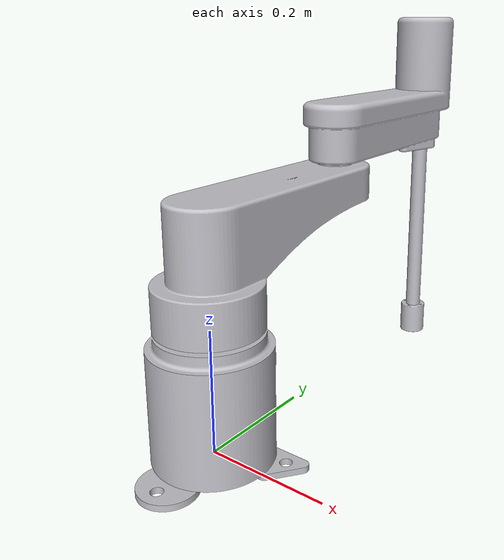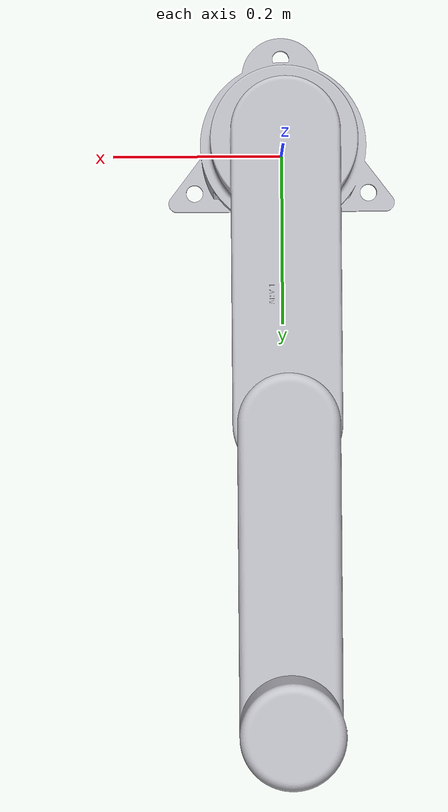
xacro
<?xml version="1.0" ?>
<robot name="robot_assembly" xmlns:xacro="http://www.ros.org/wiki/xacro">

<xacro:include filename="$(find robot_assembly_description)/urdf/materials.xacro" />
<xacro:include filename="$(find robot_assembly_description)/urdf/robot_assembly.trans" />
<xacro:include filename="$(find robot_assembly_description)/urdf/robot_assembly.gazebo" />
<link name="base_link">
  <inertial>
    <origin xyz="-1.888762183439215e-15 -0.010495627041338022 0.09733404643227067" rpy="0 0 0"/>
    <mass value="5.007906755743693"/>
    <inertia ixx="0.027282" iyy="0.030304" izz="0.02086" ixy="0.0" iyz="-0.001324" ixz="-0.0"/>
  </inertial>
  <visual>
    <origin xyz="0 0 0" rpy="0 0 0"/>
    <geometry>
      <mesh filename="package://robot_assembly_description/meshes/base_link.stl" scale="0.001 0.001 0.001"/>
    </geometry>
    <material name="silver"/>
  </visual>
  <collision>
    <origin xyz="0 0 0" rpy="0 0 0"/>
    <geometry>
      <mesh filename="package://robot_assembly_description/meshes/base_link.stl" scale="0.001 0.001 0.001"/>
    </geometry>
  </collision>
</link>

<link name="arm2_1">
  <inertial>
    <origin xyz="-9.14622896552462e-07 0.19697821278629074 0.08613854339324689" rpy="0 0 0"/>
    <mass value="4.952981163199924"/>
    <inertia ixx="0.093532" iyy="0.022331" izz="0.078607" ixy="-0.0" iyz="-0.018464" ixz="-0.0"/>
  </inertial>
  <visual>
    <origin xyz="-0.0 -0.32 -0.3985" rpy="0 0 0"/>
    <geometry>
      <mesh filename="package://robot_assembly_description/meshes/arm2_1.stl" scale="0.001 0.001 0.001"/>
    </geometry>
    <material name="silver"/>
  </visual>
  <collision>
    <origin xyz="-0.0 -0.32 -0.3985" rpy="0 0 0"/>
    <geometry>
      <mesh filename="package://robot_assembly_description/meshes/arm2_1.stl" scale="0.001 0.001 0.001"/>
    </geometry>
  </collision>
</link>

<link name="shaft_1">
  <inertial>
    <origin xyz="3.204271979681934e-16 2.55351295663786e-15 -0.2276256112953061" rpy="0 0 0"/>
    <mass value="0.29882619323390436"/>
    <inertia ixx="0.004714" iyy="0.004714" izz="5.9e-05" ixy="-0.0" iyz="0.0" ixz="0.0"/>
  </inertial>
  <visual>
    <origin xyz="-0.0 -0.64 -0.3815" rpy="0 0 0"/>
    <geometry>
      <mesh filename="package://robot_assembly_description/meshes/shaft_1.stl" scale="0.001 0.001 0.001"/>
    </geometry>
    <material name="silver"/>
  </visual>
  <collision>
    <origin xyz="-0.0 -0.64 -0.3815" rpy="0 0 0"/>
    <geometry>
      <mesh filename="package://robot_assembly_description/meshes/shaft_1.stl" scale="0.001 0.001 0.001"/>
    </geometry>
  </collision>
</link>

<link name="arm1_1">
  <inertial>
    <origin xyz="-6.930929185867492e-07 0.09435703326515155 0.11934473873936169" rpy="0 0 0"/>
    <mass value="5.902218165960276"/>
    <inertia ixx="0.099613" iyy="0.025742" izz="0.088936" ixy="0.0" iyz="-0.021876" ixz="0.0"/>
  </inertial>
  <visual>
    <origin xyz="-0.0 -0.0 -0.2015" rpy="0 0 0"/>
    <geometry>
      <mesh filename="package://robot_assembly_description/meshes/arm1_1.stl" scale="0.001 0.001 0.001"/>
    </geometry>
    <material name="silver"/>
  </visual>
  <collision>
    <origin xyz="-0.0 -0.0 -0.2015" rpy="0 0 0"/>
    <geometry>
      <mesh filename="package://robot_assembly_description/meshes/arm1_1.stl" scale="0.001 0.001 0.001"/>
    </geometry>
  </collision>
</link>

<joint name="Revolute 2" type="continuous">
  <origin xyz="0.0 0.32 0.197" rpy="0 0 0"/>
  <parent link="arm1_1"/>
  <child link="arm2_1"/>
  <axis xyz="0.0 0.0 1.0"/>
</joint>

<joint name="Slider 3" type="prismatic">
  <origin xyz="0.0 0.32 -0.017" rpy="0 0 0"/>
  <parent link="arm2_1"/>
  <child link="shaft_1"/>
  <axis xyz="-0.0 -0.0 -1.0"/>
  <limit upper="0.0" lower="-0.25" effort="100" velocity="100"/>
</joint>

<joint name="Revolute 4" type="continuous">
  <origin xyz="0.0 0.0 0.2015" rpy="0 0 0"/>
  <parent link="base_link"/>
  <child link="arm1_1"/>
  <axis xyz="0.0 0.0 1.0"/>
</joint>

</robot>

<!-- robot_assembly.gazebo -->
<robot name="robot_assembly" xmlns:xacro="http://www.ros.org/wiki/xacro" >

<xacro:property name="body_color" value="Gazebo/Silver" />

<gazebo>
  <plugin name="control" filename="libgazebo_ros_control.so"/>
</gazebo>
<gazebo reference="base_link">
  <material>${body_color}</material>
  <mu1>0.2</mu1>
  <mu2>0.2</mu2>
  <selfCollide>true</selfCollide>
  <gravity>true</gravity>
</gazebo>

<gazebo reference="arm2_1">
  <material>${body_color}</material>
  <mu1>0.2</mu1>
  <mu2>0.2</mu2>
  <selfCollide>true</selfCollide>
</gazebo>

<gazebo reference="shaft_1">
  <material>${body_color}</material>
  <mu1>0.2</mu1>
  <mu2>0.2</mu2>
  <selfCollide>true</selfCollide>
</gazebo>

<gazebo reference="arm1_1">
  <material>${body_color}</material>
  <mu1>0.2</mu1>
  <mu2>0.2</mu2>
  <selfCollide>true</selfCollide>
</gazebo>

</robot>
